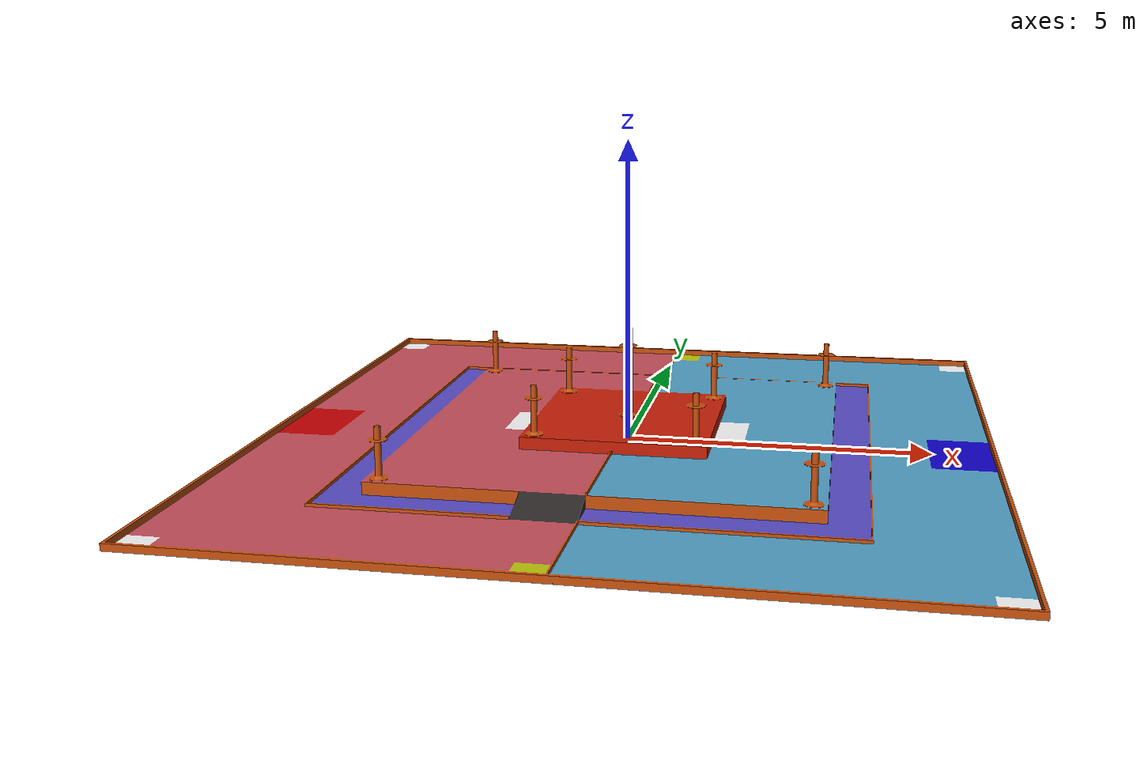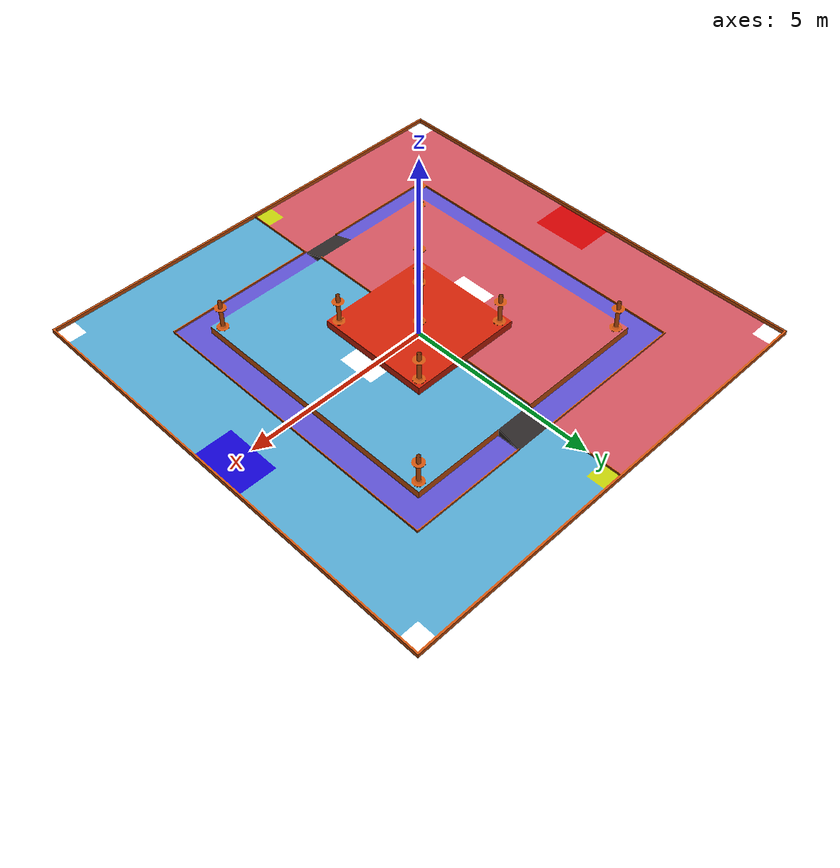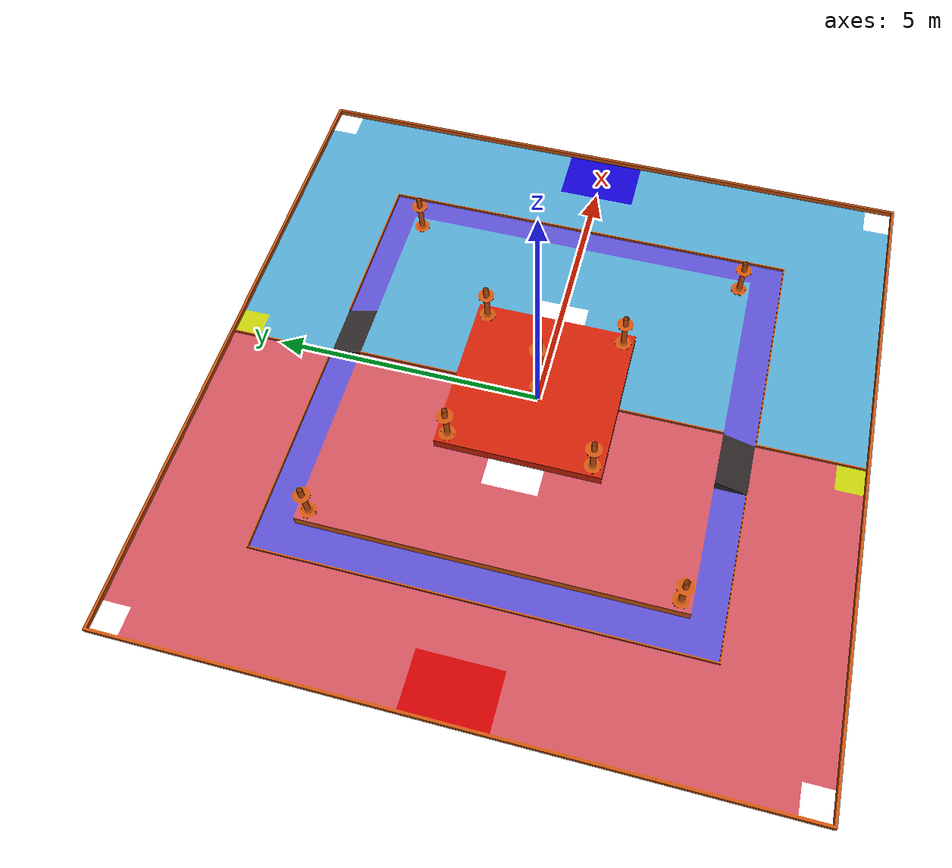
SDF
<?xml version='1.0'?>
<sdf version="1.7">
    <model name="robocon_2023">
        <static>false</static>
        <self_collide>0</self_collide>
        <allow_auto_disable>1</allow_auto_disable>

        <link name="link">

            <gravity>1</gravity>
            <self_collide>0</self_collide>
            <kinematic>0</kinematic>

            <inertial>
                <mass>12.9</mass>
                <inertia>
                    <ixx>62.20598</ixx>
                    <ixy>-0.20982</ixy>
                    <ixz>-0.0</ixz>
                    <iyy>60.61609</iyy>
                    <iyz>-0.0</iyz>
                    <izz>122.56283</izz>
                </inertia>

                <frame name="link_inertia_frame">
                    <pose frame="link_frame">0 0 0 0 -0 0</pose>
                </frame>

                <pose frame="link_inertia_frame">-0.0 -0.0 0.13 0 0 0 </pose>
            </inertial>

            <collision name="collision">
                <max_contacts>20</max_contacts>

                <frame name="collision_frame">
                    <pose frame="link_frame">0 0 0 0 -0 0</pose>
                </frame>
                <pose frame="collision_frame">0 0 0 0 -0 0</pose>

                <geometry>
                    <mesh>
                        <uri>meshes/field.stl</uri>
                        <scale>1.0 1.0 1.0</scale>
                    </mesh>
                </geometry>
                <surface></surface>
            </collision>

            <visual name="visual">
                <cast_shadows>1</cast_shadows>
                <transparency>0</transparency>

                <frame name="visual_frame">
                    <pose frame="link_frame">0 0 0 0 -0 0</pose>
                </frame>
                <pose frame="visual_frame">0 0 0 0 -0 0</pose>
                <geometry>
                    <mesh>
                        <uri>meshes/field.dae</uri>
                        <scale>1.0 1.0 1.0</scale>
                    </mesh>
                </geometry>
            </visual>
        </link>
    </model>
</sdf>
